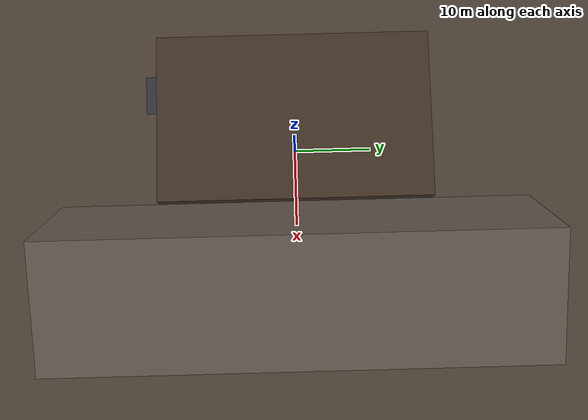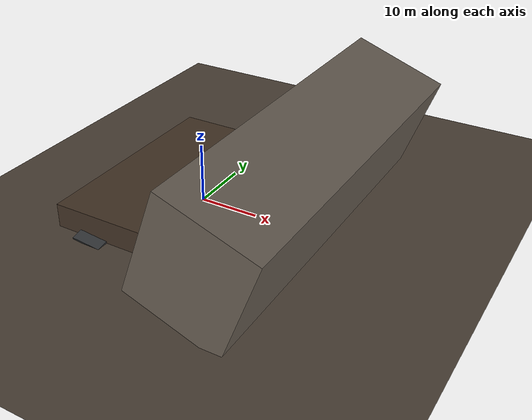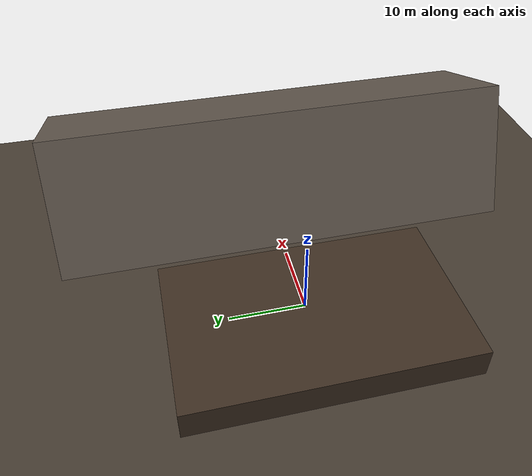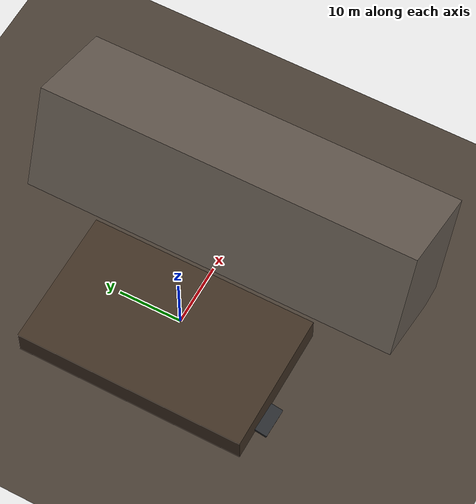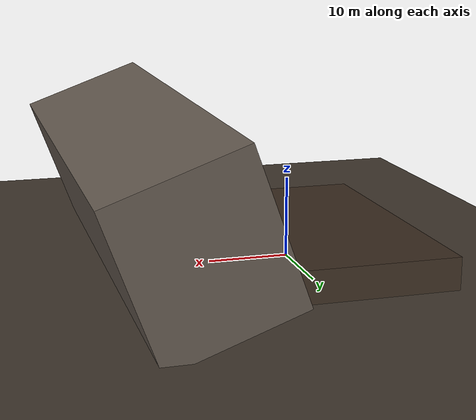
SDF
<?xml version="1.0"?>
<sdf version="1.9">
  <world name="aegis_landslide_zone">

    <physics name="1ms" type="ignored">
      <max_step_size>0.001</max_step_size>
      <real_time_factor>1.0</real_time_factor>
    </physics>

    <!-- Essential Gazebo Harmonic Core Plugins -->
    <plugin filename="gz-sim-physics-system" name="gz::sim::systems::Physics"></plugin>
    <plugin filename="gz-sim-user-commands-system" name="gz::sim::systems::UserCommands"></plugin>
    <plugin filename="gz-sim-scene-broadcaster-system" name="gz::sim::systems::SceneBroadcaster"></plugin>
    <plugin filename="gz-sim-sensors-system" name="gz::sim::systems::Sensors">
      <render_engine>ogre2</render_engine>
    </plugin>
    <!-- Multi-spectral LWIR thermal plugin for per-object radiation -->
    <plugin filename="gz-sim-thermal-sensor-system" name="gz::sim::systems::Thermal"></plugin>
    <plugin filename="gz-sim-imu-system" name="gz::sim::systems::Imu"></plugin>
    <plugin filename="gz-sim-air-pressure-system" name="gz::sim::systems::AirPressure"></plugin>
    <plugin filename="gz-sim-navsat-system" name="gz::sim::systems::NavSat"></plugin>

    <!-- Atmospheric Lighting: Stormy Mountain Sun -->
    <light type="directional" name="sunUTC">
      <pose>20 30 50 0 0 0</pose>
      <diffuse>0.85 0.82 0.78 1</diffuse>
      <specular>0.25 0.25 0.25 1</specular>
      <direction>-0.3 -0.4 -0.8</direction>
      <cast_shadows>true</cast_shadows>
    </light>

    <!-- Valley Bedrock Ground Plane (Ambient 295K) -->
    <model name="valley_floor">
      <static>true</static>
      <link name="link">
        <collision name="collision">
          <geometry><plane><normal>0 0 1</normal><size>140 140</size></plane></geometry>
        </collision>
        <visual name="visual">
          <geometry><plane><normal>0 0 1</normal><size>140 140</size></plane></geometry>
          <material>
            <ambient>0.25 0.22 0.18 1</ambient>
            <diffuse>0.28 0.24 0.20 1</diffuse>
          </material>
          <plugin filename="gz-sim-thermal-sensor-system" name="gz::sim::systems::Thermal">
            <temperature>295</temperature>
          </plugin>
        </visual>
      </link>
    </model>

    <!-- Mountain Escarpment (Crown Scarp failure slope) -->
    <model name="crown_scarp_ridge">
      <static>true</static>
      <pose>18 0 10 0 0.35 0</pose>
      <link name="link">
        <collision name="collision">
          <geometry><box><size>16 60 18</size></box></geometry>
        </collision>
        <visual name="visual">
          <geometry><box><size>16 60 18</size></box></geometry>
          <material>
            <ambient>0.35 0.32 0.28 1</ambient>
            <diffuse>0.40 0.36 0.32 1</diffuse>
          </material>
          <plugin filename="gz-sim-thermal-sensor-system" name="gz::sim::systems::Thermal">
            <temperature>296</temperature>
          </plugin>
        </visual>
      </link>
    </model>

    <!-- Landslide Debris Mounds (Humocky mud deposit) -->
    <model name="debris_tongue_mound">
      <static>true</static>
      <pose>-4 0 2 0 0 0</pose>
      <link name="link">
        <collision name="collision">
          <geometry><box><size>22 36 4</size></box></geometry>
        </collision>
        <visual name="visual">
          <geometry><box><size>22 36 4</size></box></geometry>
          <material>
            <ambient>0.22 0.17 0.12 1</ambient>
            <diffuse>0.25 0.19 0.14 1</diffuse>
          </material>
          <plugin filename="gz-sim-thermal-sensor-system" name="gz::sim::systems::Thermal">
            <temperature>294</temperature>
          </plugin>
        </visual>
      </link>
    </model>

    <!-- Sheared Mountain Highway (Cracked asphalt slab) -->
    <model name="highway_shear_slab">
      <static>true</static>
      <pose>-8 -14 1.2 0.2 0.1 0</pose>
      <link name="link">
        <collision name="collision">
          <geometry><box><size>5 12 0.3</size></box></geometry>
        </collision>
        <visual name="visual">
          <geometry><box><size>5 12 0.3</size></box></geometry>
          <material>
            <ambient>0.15 0.16 0.18 1</ambient>
            <diffuse>0.18 0.19 0.20 1</diffuse>
          </material>
          <plugin filename="gz-sim-thermal-sensor-system" name="gz::sim::systems::Thermal">
            <temperature>298</temperature>
          </plugin>
        </visual>
      </link>
    </model>

    <!-- PRIMARY VICTIM (Body temperature: 310K ~ 36.85°C) -->
    <model name="victim_primary">
      <static>true</static>
      <pose>3.5 1.5 0.25 0 0 0.6</pose>
      <link name="link">
        <collision name="collision">
          <geometry><capsule><radius>0.2</radius><length>1.6</length></capsule></geometry>
        </collision>
        <visual name="visual">
          <geometry><capsule><radius>0.2</radius><length>1.6</length></capsule></geometry>
          <material>
            <ambient>0.5 0.35 0.25 1</ambient>
            <diffuse>0.6 0.45 0.35 1</diffuse>
          </material>
          <plugin filename="gz-sim-thermal-sensor-system" name="gz::sim::systems::Thermal">
            <temperature>310</temperature>
          </plugin>
        </visual>
      </link>
    </model>

    <!-- SECONDARY OCCLUDED VICTIM (Body temperature: 309K) -->
    <model name="victim_occluded">
      <static>true</static>
      <pose>-7 -9 0.25 0.2 0 1.2</pose>
      <link name="link">
        <collision name="collision">
          <geometry><capsule><radius>0.18</radius><length>1.5</length></capsule></geometry>
        </collision>
        <visual name="visual">
          <geometry><capsule><radius>0.18</radius><length>1.5</length></capsule></geometry>
          <material>
            <ambient>0.45 0.32 0.22 1</ambient>
            <diffuse>0.55 0.40 0.30 1</diffuse>
          </material>
          <plugin filename="gz-sim-thermal-sensor-system" name="gz::sim::systems::Thermal">
            <temperature>309</temperature>
          </plugin>
        </visual>
      </link>
    </model>

    <!-- THERMAL FALSE POSITIVE: Sun-warmed granite rock (305K ~ 31.8°C) -->
    <model name="warm_rock_false_positive">
      <static>true</static>
      <pose>4 -8 0.6 0.2 0.3 0</pose>
      <link name="link">
        <collision name="collision">
          <geometry><box><size>2.2 1.8 1.4</size></box></geometry>
        </collision>
        <visual name="visual">
          <geometry><box><size>2.2 1.8 1.4</size></box></geometry>
          <material>
            <ambient>0.35 0.32 0.28 1</ambient>
            <diffuse>0.42 0.38 0.34 1</diffuse>
          </material>
          <plugin filename="gz-sim-thermal-sensor-system" name="gz::sim::systems::Thermal">
            <temperature>305</temperature>
          </plugin>
        </visual>
      </link>
    </model>

    <!-- DISASTER HAZARD: High-Voltage Arcing Power Line (315K short circuit) -->
    <model name="downed_power_line">
      <static>true</static>
      <pose>-6 -12 0.1 0 0 0.4</pose>
      <link name="link">
        <collision name="collision">
          <geometry><cylinder><radius>0.04</radius><length>6.0</length></cylinder></geometry>
        </collision>
        <visual name="visual">
          <geometry><cylinder><radius>0.04</radius><length>6.0</length></cylinder></geometry>
          <material>
            <ambient>0.1 0.1 0.1 1</ambient>
            <diffuse>0.15 0.15 0.15 1</diffuse>
          </material>
          <plugin filename="gz-sim-thermal-sensor-system" name="gz::sim::systems::Thermal">
            <temperature>315</temperature>
          </plugin>
        </visual>
      </link>
    </model>

    <!-- DISASTER HAZARD: Ruptured Fuel Line Combustion (873K ~ 600°C) -->
    <model name="fire_combustion_hazard">
      <static>true</static>
      <pose>-1 -6 0.4 0 0 0</pose>
      <link name="link">
        <collision name="collision">
          <geometry><cylinder><radius>0.5</radius><length>0.8</length></cylinder></geometry>
        </collision>
        <visual name="visual">
          <geometry><cylinder><radius>0.5</radius><length>0.8</length></cylinder></geometry>
          <material>
            <ambient>0.9 0.25 0.05 1</ambient>
            <diffuse>0.95 0.3 0.1 1</diffuse>
            <emissive>0.9 0.3 0.05 1</emissive>
          </material>
          <plugin filename="gz-sim-thermal-sensor-system" name="gz::sim::systems::Thermal">
            <temperature>873</temperature>
          </plugin>
        </visual>
      </link>
    </model>

  </world>
</sdf>
